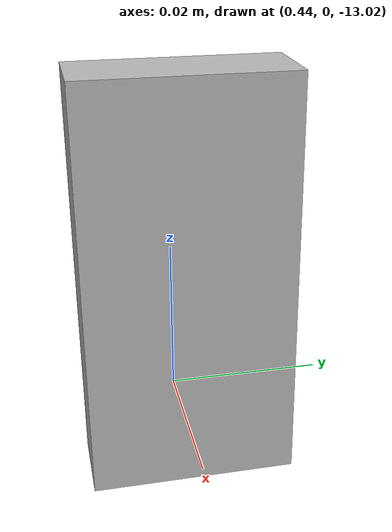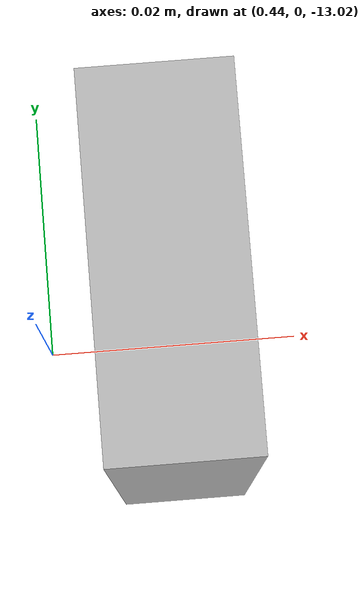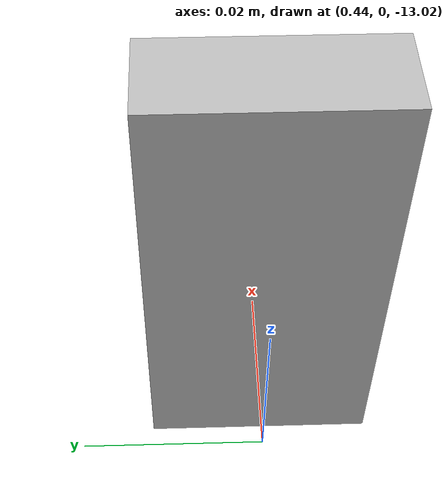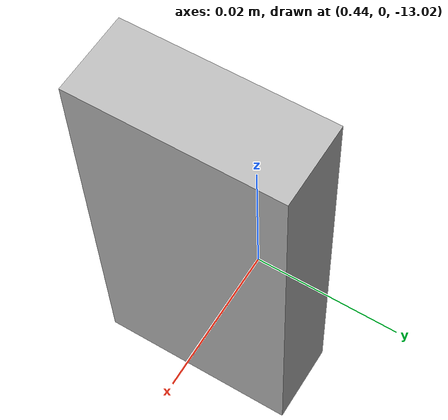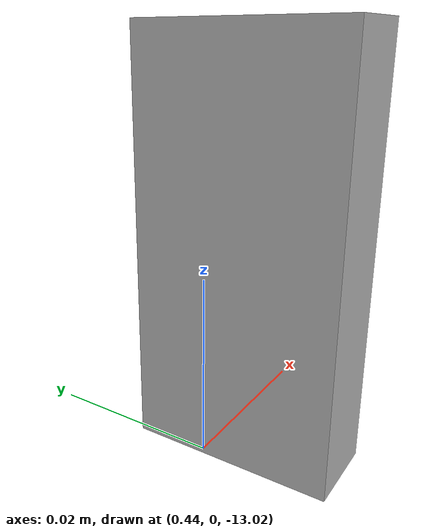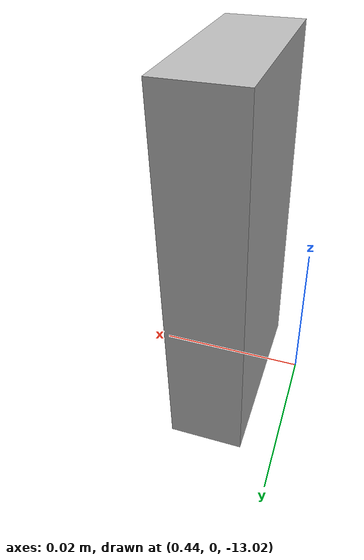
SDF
<?xml version="1.0" ?>
<sdf version="1.4">

  <world name="default">
    <include>
      <uri>model://ground_plane</uri>
      <surface>
          <contact>
            <ode>
              <kp>900000000.0</kp>
              <kd>800000000.0</kd>
            </ode>
          </contact>
          <friction>
            <ode>
              <mu>1.0</mu>
              <mu2>1.0</mu2>
              <fdir1>1.0 1.0 1.0</fdir1>
              <slip1>0.0</slip1>
              <slip2>0.0</slip2>
            </ode>
          </friction>
        </surface>
    </include>

    <scene>
      <ambient>0.45 0.45 0.45 1.0 </ambient>
      <background>0 0 0 0</background>
    </scene>

    <model name='lab_light_1'>
    <static>0</static>
    <link name='lab_light_1_link'>
      <gravity>0</gravity>
      <inertial>
        <mass>5.0</mass>
        <inertia>
          <ixx>0.083</ixx>
          <ixy>0.0</ixy>
          <ixz>0.0</ixz>
          <iyy>0.083</iyy>
          <iyz>0.0</iyz>
          <izz>0.083</izz>
        </inertia>
      </inertial>
      <light type="directional" name="light">
      <pose>0 0 -10 0 0 0</pose>
      <diffuse>0.8 0.8 0.8 1</diffuse>
      <specular>0.2 0.2 0.2 1</specular>
      <attenuation>
        <range>500</range>
        <constant>0.9</constant>
        <linear>0.01</linear>
        <quadratic>0.001</quadratic>
      </attenuation>
      <direction>-0.5 -0.3 1.0</direction>
    </light>
    </link>
    </model>

     <model name="downtop_camera">
      <pose>0.45 0 -13 0 -1.57 0.0</pose>
      <static>true</static>
      <link name="camera_link">
      <visual name='downtop_visual'>
        <geometry>
          <box>
            <size>0.05 0.025 0.01</size>
          </box>
        </geometry>
      </visual>
        <sensor type="camera" name="downtop_camera">
          <update_rate>60</update_rate>
          <visualize>true</visualize>
          <camera name="head">
            <horizontal_fov>0.10</horizontal_fov>
            <image>
              <width>1500</width>
              <height>1000</height>
              <format>R8G8B8</format>
            </image>
            <clip>
              <near>0.02</near>
              <far>300</far>
            </clip>
            <lens>
              <type>orthographic</type>
            </lens>
          </camera>
           <plugin name='camera_ros_controller' filename='libgazebo_ros_camera.so'>
            <baseline>0.2</baseline>
            <alwaysOn>false</alwaysOn>
            <updateRate>60.0</updateRate>
            <cameraName>downtop_camera</cameraName>
            <imageTopicName>/downtop_camera/image_raw</imageTopicName>
            <cameraInfoTopicName>/downtop_camera/camera_info</cameraInfoTopicName>
            <pointCloudCutoffMax>10.0</pointCloudCutoffMax>
            <distortionK1>0.00000001</distortionK1>
            <distortionK2>0.00000001</distortionK2>
            <distortionK3>0.00000001</distortionK3>
            <distortionT1>0.00000001</distortionT1>
            <distortionT2>0.00000001</distortionT2>
          </plugin>
        </sensor>
      </link>
    </model>

  </world>
</sdf>
